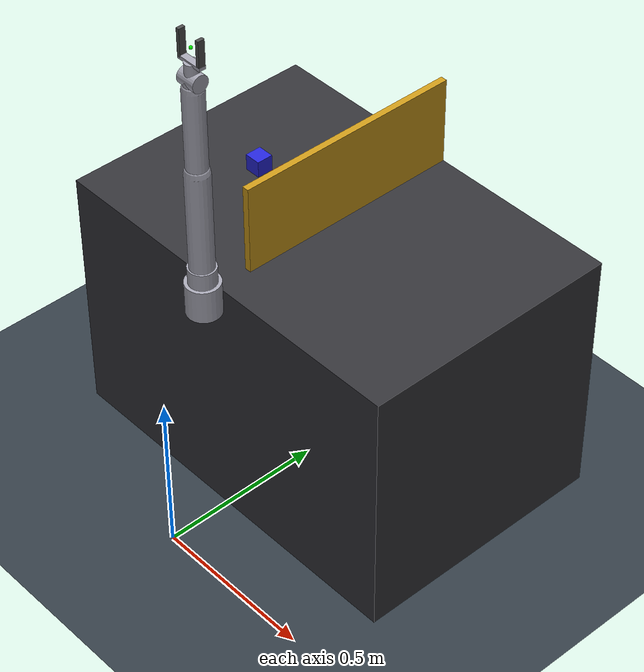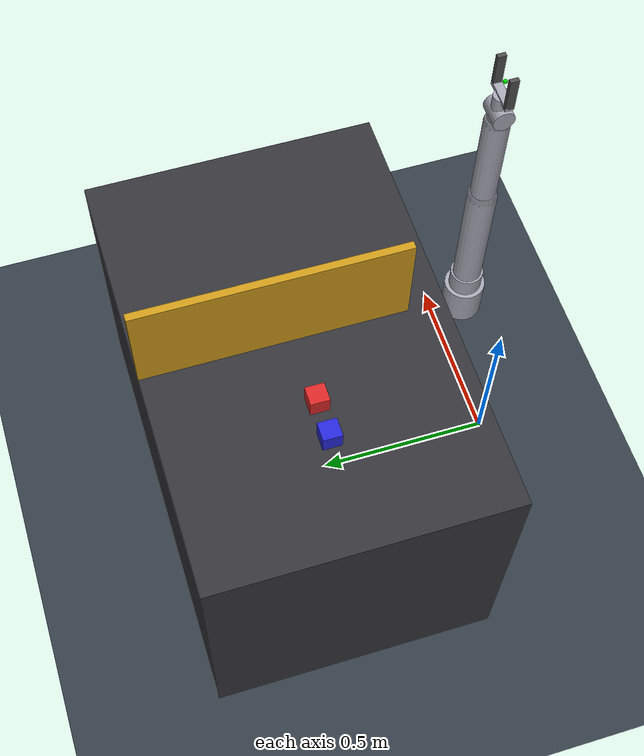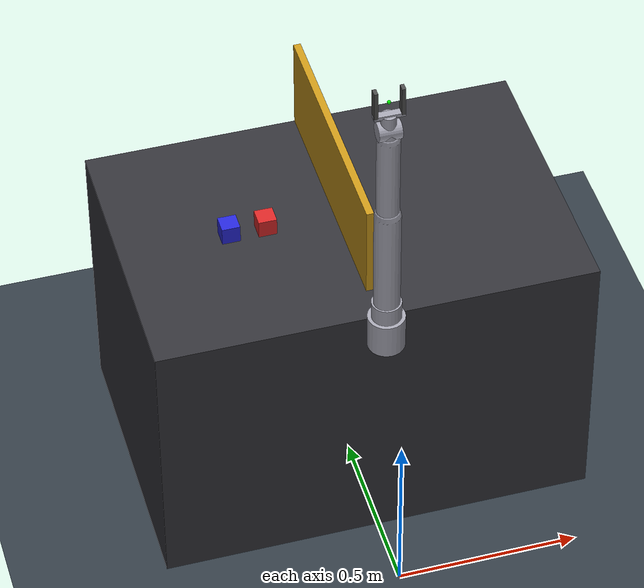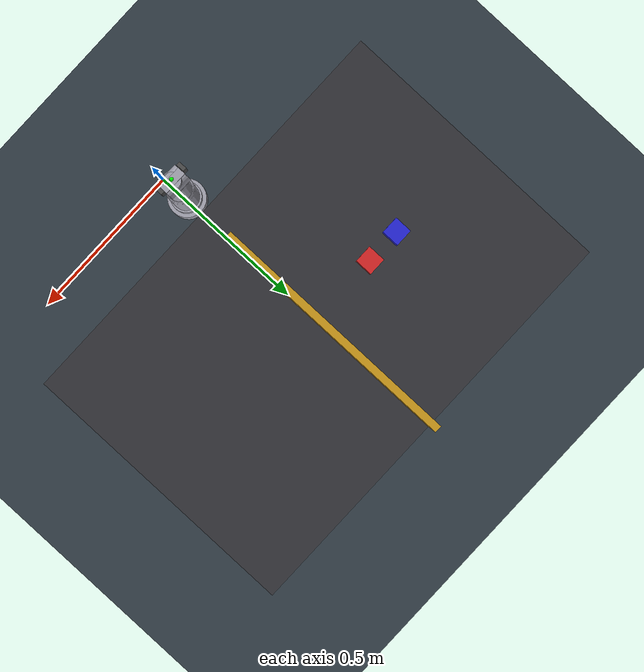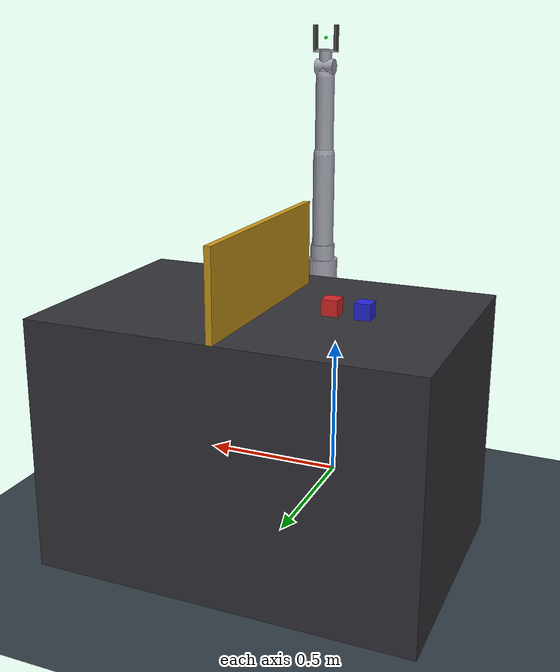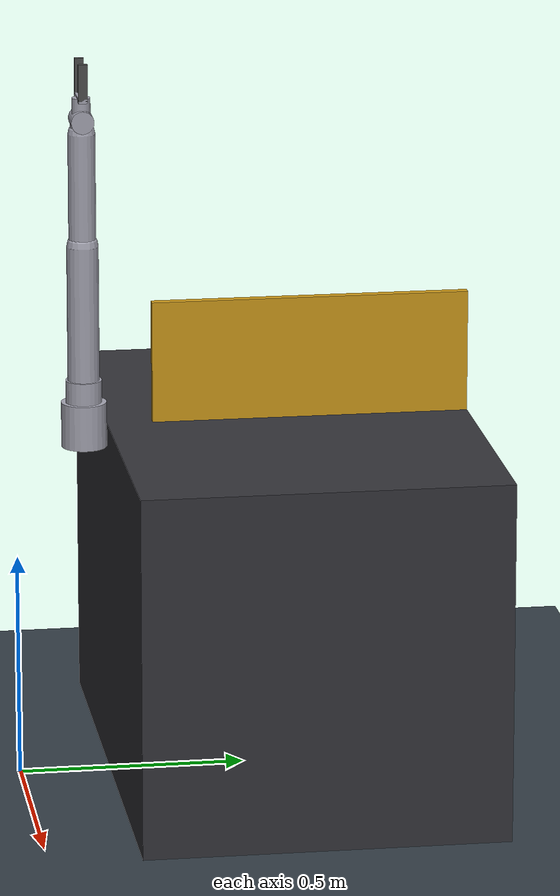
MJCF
<mujoco model="rs_round2_challenge">
  <compiler angle="radian" coordinate="local"/>
  <option timestep="0.002" gravity="0 0 -9.81"/>

  <asset>
    <!-- Floor checkerboard pattern for spatial reference and tracking -->
    <texture name="grid" type="2d" builtin="checker" rgb1=".25 .3 .35" rgb2=".15 .18 .2" width="512" height="512" mark="edge" markrgb=".3 .4 .5"/>
    <material name="floor_mat" texture="grid" texrepeat="2 2" texuniform="true"/>
    <material name="table_mat" rgba="0.2 0.2 0.22 1" roughness="0.5"/>
    <material name="robot_mat" rgba="0.65 0.65 0.7 1" roughness="0.3"/>
    <material name="finger_mat" rgba="0.3 0.3 0.3 1" roughness="0.6"/>
    <material name="block1_mat" rgba="0.85 0.15 0.15 1" roughness="0.2"/>
    <material name="block2_mat" rgba="0.15 0.15 0.85 1" roughness="0.2"/>
    <material name="barrier_mat" rgba="0.8 0.6 0.1 1" roughness="0.4"/>
  </asset>

  <worldbody>
    <light directional="true" diffuse=".8 .8 .8" specular="0.1 0.1 0.1" pos="0 0 5" dir="0 0 -1"/>
    <geom name="floor" type="plane" size="0 0 .25" material="floor_mat" contype="1" conaffinity="4"/>

    <!-- Table -->
    <body name="table" pos="0 0.6 0.4">
      <geom name="table_top" type="box" size="0.6 0.4 0.4" material="table_mat" contype="1" conaffinity="4"/>
    </body>

    <!-- 6-DOF Manipulator kinematic chain -->
    <body name="robot_base" pos="0 0.15 0.8">
      <geom name="base" type="cylinder" size="0.05 0.05" material="robot_mat" contype="2" conaffinity="4"/>
      <!-- Joint 1: Shoulder Pan -->
      <body name="link1" pos="0 0 0.05">
        <joint name="joint1" type="hinge" axis="0 0 1" range="-3.14 3.14" limited="true" damping="2.0"/>
        <geom name="geom_link1" type="cylinder" size="0.04 0.05" material="robot_mat" contype="2" conaffinity="4"/>
        <!-- Joint 2: Shoulder Lift -->
        <body name="link2" pos="0 0 0.05">
          <joint name="joint2" type="hinge" axis="0 1 0" range="-2.0 2.0" limited="true" damping="4.0"/>
          <geom name="geom_link2" type="capsule" fromto="0 0 0 0 0 0.3" size="0.035" material="robot_mat" contype="2" conaffinity="4"/>
          <!-- Joint 3: Elbow -->
          <body name="link3" pos="0 0 0.3">
            <joint name="joint3" type="hinge" axis="0 1 0" range="-2.5 2.5" limited="true" damping="4.0"/>
            <geom name="geom_link3" type="capsule" fromto="0 0 0 0 0 0.25" size="0.03" material="robot_mat" contype="2" conaffinity="4"/>
            <!-- Joint 4: Wrist 1 -->
            <body name="link4" pos="0 0 0.25">
              <joint name="joint4" type="hinge" axis="0 1 0" range="-3.14 3.14" limited="true" damping="2.0"/>
              <geom name="geom_link4" type="cylinder" size="0.025 0.03" material="robot_mat" contype="2" conaffinity="4"/>
              <!-- Joint 5: Wrist 2 -->
              <body name="link5" pos="0 0 0.03">
                <joint name="joint5" type="hinge" axis="1 0 0" range="-3.14 3.14" limited="true" damping="1.0"/>
                <geom name="geom_link5" type="cylinder" size="0.025 0.03" material="robot_mat" quat="0.707 0 0.707 0" contype="2" conaffinity="4"/>
                <!-- Joint 6: Wrist 3 -->
                <body name="link6" pos="0 0 0.03">
                  <joint name="joint6" type="hinge" axis="0 0 1" range="-3.14 3.14" limited="true" damping="1.0"/>
                  <geom name="geom_link6" type="cylinder" size="0.02 0.02" material="robot_mat" contype="2" conaffinity="4"/>
                  <!-- Gripper -->
                  <body name="gripper_base" pos="0 0 0.02">
                    <geom name="gripper_block" type="box" size="0.04 0.01 0.005" material="robot_mat" contype="2" conaffinity="4"/>
                    <!-- Left finger -->
                    <body name="left_finger" pos="-0.035 0 0.04">
                      <joint name="left_finger_joint" type="slide" axis="1 0 0" range="0 0.025" limited="true" damping="2.0"/>
                      <geom name="left_finger_geom" type="box" size="0.005 0.01 0.04" material="finger_mat" condim="4" friction="2.0 0.05 0.0001" solref="0.002 1" contype="2" conaffinity="4"/>
                    </body>
                    <!-- Right finger -->
                    <body name="right_finger" pos="0.035 0 0.04">
                      <joint name="right_finger_joint" type="slide" axis="-1 0 0" range="0 0.025" limited="true" damping="2.0"/>
                      <geom name="right_finger_geom" type="box" size="0.005 0.01 0.04" material="finger_mat" condim="4" friction="2.0 0.05 0.0001" solref="0.002 1" contype="2" conaffinity="4"/>
                    </body>
                    <site name="eef" pos="0 0 0.04" size="0.005" rgba="0 1 0 1"/>
                  </body>
                </body>
              </body>
            </body>
          </body>
        </body>
      </body>
    </body>

    <!-- Central partition barrier. Height matches 1/3 of maximum manipulator vertical reach. -->
    <body name="barrier" pos="0 0.65 0.935">
      <geom name="barrier_geom" type="box" size="0.01 0.35 0.135" material="barrier_mat" contype="1" conaffinity="4"/>
    </body>

    <!-- Box 1 (Red) -->
    <body name="box1" pos="-0.2 0.6 0.825">
      <joint name="box1_joint" type="free"/>
      <geom name="box1_geom" type="box" size="0.025 0.025 0.025" mass="0.1" material="block1_mat" condim="4" friction="1.5 0.05 0.0001" solref="0.002 1" contype="4" conaffinity="7"/>
      <site name="box1_imu" pos="0 0 0" size="0.005"/>
    </body>

    <!-- Box 2 (Blue) -->
    <body name="box2" pos="-0.3 0.6 0.825">
      <joint name="box2_joint" type="free"/>
      <geom name="box2_geom" type="box" size="0.025 0.025 0.025" mass="0.1" material="block2_mat" condim="4" friction="1.5 0.05 0.0001" contype="4" conaffinity="7"/>
      <site name="box2_imu" pos="0 0 0" size="0.005"/>
    </body>
  </worldbody>

  <actuator>
    <position name="act_j1" joint="joint1" kp="300" ctrlrange="-3.14 3.14"/>
    <position name="act_j2" joint="joint2" kp="1200" ctrlrange="-2.0 2.0"/>
    <position name="act_j3" joint="joint3" kp="1200" ctrlrange="-2.5 2.5"/>
    <position name="act_j4" joint="joint4" kp="400" ctrlrange="-3.14 3.14"/>
    <position name="act_j5" joint="joint5" kp="200" ctrlrange="-3.14 3.14"/>
    <position name="act_j6" joint="joint6" kp="200" ctrlrange="-3.14 3.14"/>
    <position name="act_gripper_l" joint="left_finger_joint" kp="1500" ctrlrange="0 0.025"/>
    <position name="act_gripper_r" joint="right_finger_joint" kp="1500" ctrlrange="0 0.025"/>
  </actuator>

  <sensor>
    <accelerometer name="box1_accel" site="box1_imu"/>
    <gyro name="box1_gyro" site="box1_imu"/>
    <accelerometer name="box2_accel" site="box2_imu"/>
    <gyro name="box2_gyro" site="box2_imu"/>
  </sensor>

  <contact>
    <!-- Collision exclusion: self-collisions along kinematic chain -->
    <exclude body1="robot_base" body2="link1"/>
    <exclude body1="robot_base" body2="link2"/>
    <exclude body1="link1" body2="link2"/>
    <exclude body1="link1" body2="link3"/>
    <exclude body1="link2" body2="link3"/>
    <exclude body1="link2" body2="link4"/>
    <exclude body1="link3" body2="link4"/>
    <exclude body1="link3" body2="link5"/>
    <exclude body1="link4" body2="link5"/>
    <exclude body1="link4" body2="link6"/>
    <exclude body1="link5" body2="link6"/>
    <exclude body1="link5" body2="gripper_base"/>
    <exclude body1="link6" body2="gripper_base"/>
    <exclude body1="gripper_base" body2="left_finger"/>
    <exclude body1="gripper_base" body2="right_finger"/>

    <!-- Collision exclusion: manipulator base and links with workbench surface -->
    <exclude body1="robot_base" body2="table"/>
    <exclude body1="link1" body2="table"/>
    <exclude body1="link2" body2="table"/>
    <exclude body1="link3" body2="table"/>
    <exclude body1="link4" body2="table"/>
    <exclude body1="link5" body2="table"/>
    <exclude body1="link6" body2="table"/>
    <exclude body1="gripper_base" body2="table"/>
    <exclude body1="left_finger" body2="table"/>
    <exclude body1="right_finger" body2="table"/>

    <!-- Collision exclusion: manipulator links with central barrier -->
    <exclude body1="robot_base" body2="barrier"/>
    <exclude body1="link1" body2="barrier"/>
    <exclude body1="link2" body2="barrier"/>
    <exclude body1="link3" body2="barrier"/>
    <exclude body1="link4" body2="barrier"/>
    <exclude body1="link5" body2="barrier"/>
    <exclude body1="link6" body2="barrier"/>
    <exclude body1="gripper_base" body2="barrier"/>
    <exclude body1="left_finger" body2="barrier"/>
    <exclude body1="right_finger" body2="barrier"/>
  </contact>
</mujoco>
